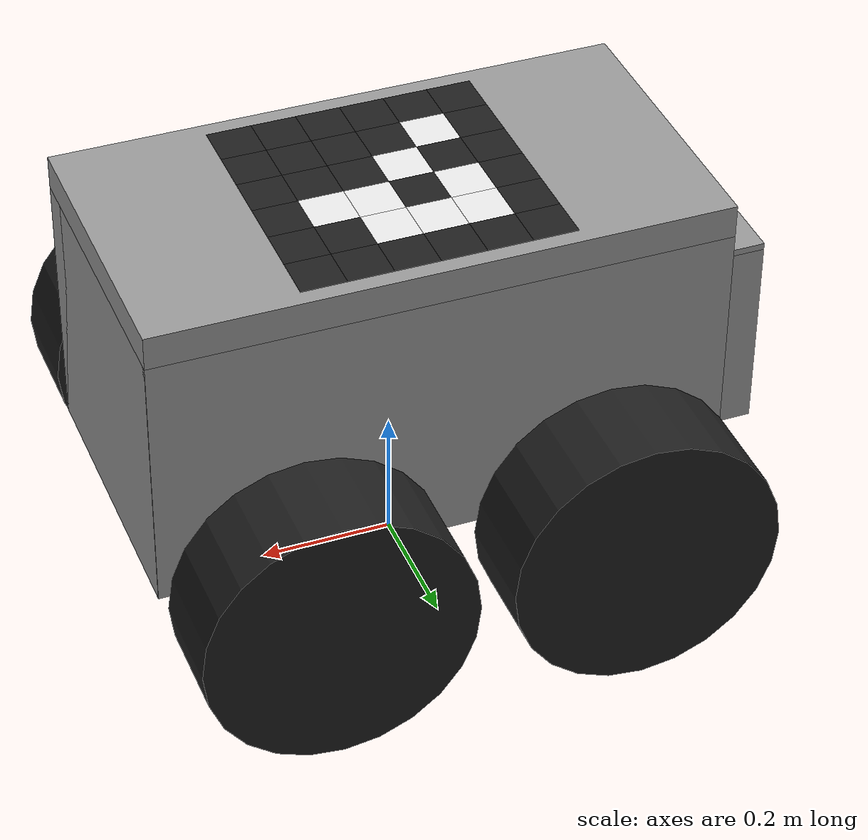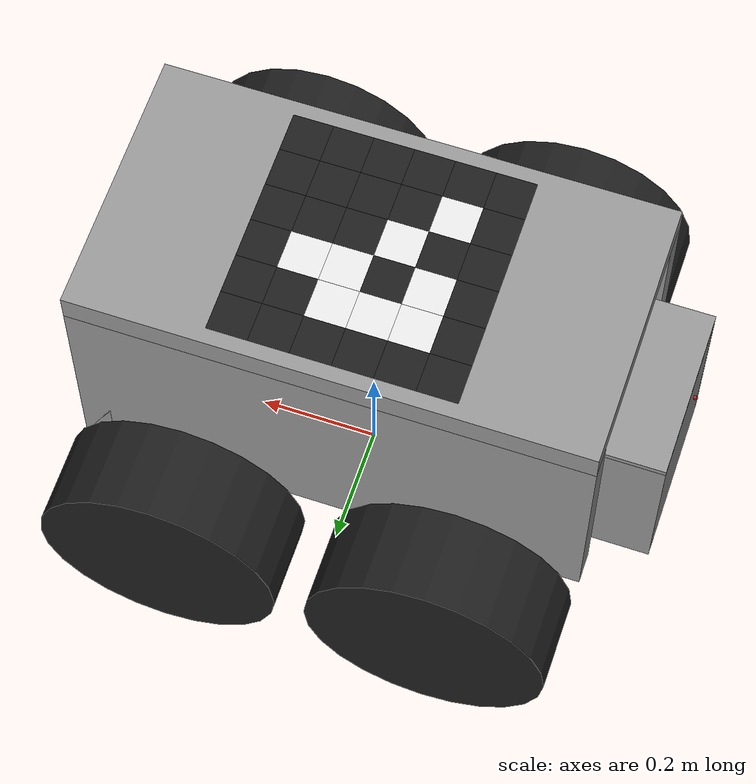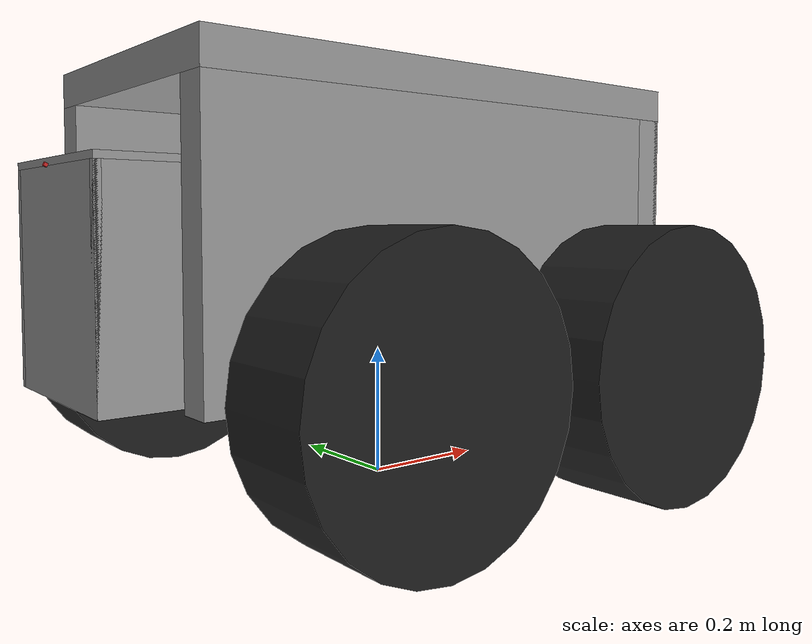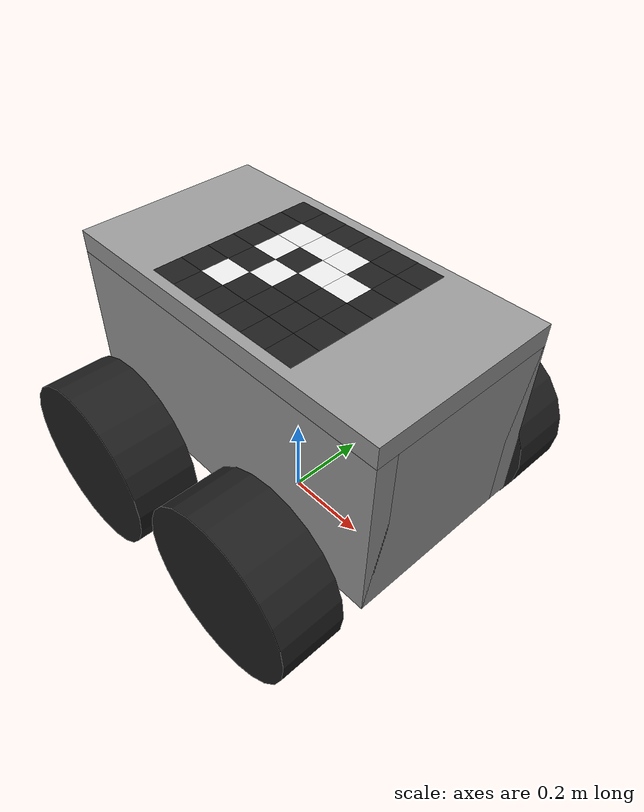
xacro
<?xml version="1.0"?>

<robot xmlns:xacro="http://www.ros.org/wiki/xacro" name="robot_1">

  <material name="White">
    <color rgba="1.0 1.0 1.0 1.0"/>
  </material>
  <material name="Black">
    <color rgba="0.1 0.1 0.1 1.0"/>
  </material>

  <xacro:macro name="cylinder_inertia" params="m r h">
    <inertia  ixx="${m*(3*r*r+h*h)/12}" ixy = "0" ixz = "0" iyy="${m*(3*r*r+h*h)/12}" iyz = "0" izz="${m*r*r/2}" />
  </xacro:macro>

  <xacro:macro name="box_inertia" params="m x y z">
    <inertia  ixx="${m*(y*y+z*z)/12}" ixy = "0" ixz = "0" iyy="${m*(x*x+z*z)/12}" iyz = "0" izz="${m*(x*x+y*y)/12}" />
  </xacro:macro>

  <xacro:macro name="sphere_inertia" params="m r">
    <inertia  ixx="${2/3*m*r*r}" ixy = "0" ixz = "0" iyy="${2/3*m*r*r}" iyz = "0" izz="${2/3*m*r*r}" />
  </xacro:macro>

  <xacro:macro name="sub_aruco_black" params="name x y z l h m">
    <link name="${name}">
      <visual>
        <geometry>
          <box size="${l} ${l} ${h}"/>
        </geometry>
        <origin xyz="${x} ${y} ${z}"/>
      </visual>
      <collision>
        <geometry>
          <box size="${l} ${l} ${h}"/>
        </geometry>
        <origin xyz="${x} ${y} ${z}"/>
      </collision>
    <inertial>
      <mass value="${m}"/>
      <xacro:box_inertia m="${m}" x="${l}" y="${l}" z="${h}" />
      <origin xyz="${x} ${y} ${z}"/>
    </inertial>
    </link>
    <gazebo reference="${name}">
      <material>Gazebo/Black</material>
    </gazebo>
  </xacro:macro>
  <xacro:macro name="sub_aruco_white" params="name x y z l h m">
    <link name="${name}">
      <visual>
        <geometry>
          <box size="${l} ${l} ${h}"/>
        </geometry>
        <origin xyz="${x} ${y} ${z}"/>
      </visual>
      <collision>
        <geometry>
          <box size="${l} ${l} ${h}"/>
        </geometry>
        <origin xyz="${x} ${y} ${z}"/>
      </collision>
    <inertial>
      <mass value="${m}"/>
      <xacro:box_inertia m="${m}" x="${l}" y="${l}" z="${h}" />
      <origin xyz="${x} ${y} ${z}"/>
    </inertial>
    </link>
    <gazebo reference="${name}">
      <material>Gazebo/White</material>
    </gazebo>
  </xacro:macro>

  <xacro:macro name="aruco" params="name x y z l h m">
    <xacro:sub_aruco_black name="${name}_11" x="${x-5*l/24}" y="${y-5*l/24}" z="${z}" l="${l/12}" h="${h}" m="${m}" />
    <xacro:sub_aruco_black name="${name}_12" x="${x-5*l/24}" y="${y-5*l/24+1*l/12}" z="${z}" l="${l/12}" h="${h}" m="${m}" />
    <xacro:sub_aruco_black name="${name}_13" x="${x-5*l/24}" y="${y-5*l/24+2*l/12}" z="${z}" l="${l/12}" h="${h}" m="${m}" />
    <xacro:sub_aruco_black name="${name}_14" x="${x-5*l/24}" y="${y-5*l/24+3*l/12}" z="${z}" l="${l/12}" h="${h}" m="${m}" />
    <xacro:sub_aruco_black name="${name}_15" x="${x-5*l/24}" y="${y-5*l/24+4*l/12}" z="${z}" l="${l/12}" h="${h}" m="${m}" />
    <xacro:sub_aruco_black name="${name}_16" x="${x-5*l/24}" y="${y-5*l/24+5*l/12}" z="${z}" l="${l/12}" h="${h}" m="${m}" />

    <xacro:sub_aruco_black name="${name}_21" x="${x-5*l/24+1*l/12}" y="${y-5*l/24}" z="${z}" l="${l/12}" h="${h}" m="${m}" />
    <xacro:sub_aruco_white name="${name}_22" x="${x-5*l/24+1*l/12}" y="${y-5*l/24+1*l/12}" z="${z}" l="${l/12}" h="${h}" m="${m}" />
    <xacro:sub_aruco_black name="${name}_23" x="${x-5*l/24+1*l/12}" y="${y-5*l/24+2*l/12}" z="${z}" l="${l/12}" h="${h}" m="${m}" />
    <xacro:sub_aruco_white name="${name}_24" x="${x-5*l/24+1*l/12}" y="${y-5*l/24+3*l/12}" z="${z}" l="${l/12}" h="${h}" m="${m}" />
    <xacro:sub_aruco_white name="${name}_25" x="${x-5*l/24+1*l/12}" y="${y-5*l/24+4*l/12}" z="${z}" l="${l/12}" h="${h}" m="${m}" />
    <xacro:sub_aruco_black name="${name}_26" x="${x-5*l/24+1*l/12}" y="${y-5*l/24+5*l/12}" z="${z}" l="${l/12}" h="${h}" m="${m}" />

    <xacro:sub_aruco_black name="${name}_31" x="${x-5*l/24+2*l/12}" y="${y-5*l/24}" z="${z}" l="${l/12}" h="${h}" m="${m}" />
    <xacro:sub_aruco_black name="${name}_32" x="${x-5*l/24+2*l/12}" y="${y-5*l/24+1*l/12}" z="${z}" l="${l/12}" h="${h}" m="${m}" />
    <xacro:sub_aruco_white name="${name}_33" x="${x-5*l/24+2*l/12}" y="${y-5*l/24+2*l/12}" z="${z}" l="${l/12}" h="${h}" m="${m}" />
    <xacro:sub_aruco_black name="${name}_34" x="${x-5*l/24+2*l/12}" y="${y-5*l/24+3*l/12}" z="${z}" l="${l/12}" h="${h}" m="${m}" />
    <xacro:sub_aruco_white name="${name}_35" x="${x-5*l/24+2*l/12}" y="${y-5*l/24+4*l/12}" z="${z}" l="${l/12}" h="${h}" m="${m}" />
    <xacro:sub_aruco_black name="${name}_36" x="${x-5*l/24+2*l/12}" y="${y-5*l/24+5*l/12}" z="${z}" l="${l/12}" h="${h}" m="${m}" />

    <xacro:sub_aruco_black name="${name}_41" x="${x-5*l/24+3*l/12}" y="${y-5*l/24}" z="${z}" l="${l/12}" h="${h}" m="${m}" />
    <xacro:sub_aruco_black name="${name}_42" x="${x-5*l/24+3*l/12}" y="${y-5*l/24+1*l/12}" z="${z}" l="${l/12}" h="${h}" m="${m}" />
    <xacro:sub_aruco_black name="${name}_43" x="${x-5*l/24+3*l/12}" y="${y-5*l/24+2*l/12}" z="${z}" l="${l/12}" h="${h}" m="${m}" />
    <xacro:sub_aruco_white name="${name}_44" x="${x-5*l/24+3*l/12}" y="${y-5*l/24+3*l/12}" z="${z}" l="${l/12}" h="${h}" m="${m}" />
    <xacro:sub_aruco_white name="${name}_45" x="${x-5*l/24+3*l/12}" y="${y-5*l/24+4*l/12}" z="${z}" l="${l/12}" h="${h}" m="${m}" />
    <xacro:sub_aruco_black name="${name}_46" x="${x-5*l/24+3*l/12}" y="${y-5*l/24+5*l/12}" z="${z}" l="${l/12}" h="${h}" m="${m}" />

    <xacro:sub_aruco_black name="${name}_51" x="${x-5*l/24+4*l/12}" y="${y-5*l/24}" z="${z}" l="${l/12}" h="${h}" m="${m}" />
    <xacro:sub_aruco_black name="${name}_52" x="${x-5*l/24+4*l/12}" y="${y-5*l/24+1*l/12}" z="${z}" l="${l/12}" h="${h}" m="${m}" />
    <xacro:sub_aruco_black name="${name}_53" x="${x-5*l/24+4*l/12}" y="${y-5*l/24+2*l/12}" z="${z}" l="${l/12}" h="${h}" m="${m}" />
    <xacro:sub_aruco_white name="${name}_54" x="${x-5*l/24+4*l/12}" y="${y-5*l/24+3*l/12}" z="${z}" l="${l/12}" h="${h}" m="${m}" />
    <xacro:sub_aruco_black name="${name}_55" x="${x-5*l/24+4*l/12}" y="${y-5*l/24+4*l/12}" z="${z}" l="${l/12}" h="${h}" m="${m}" />
    <xacro:sub_aruco_black name="${name}_56" x="${x-5*l/24+4*l/12}" y="${y-5*l/24+5*l/12}" z="${z}" l="${l/12}" h="${h}" m="${m}" />

    <xacro:sub_aruco_black name="${name}_61" x="${x-5*l/24+5*l/12}" y="${y-5*l/24}" z="${z}" l="${l/12}" h="${h}" m="${m}" />
    <xacro:sub_aruco_black name="${name}_62" x="${x-5*l/24+5*l/12}" y="${y-5*l/24+1*l/12}" z="${z}" l="${l/12}" h="${h}" m="${m}" />
    <xacro:sub_aruco_black name="${name}_63" x="${x-5*l/24+5*l/12}" y="${y-5*l/24+2*l/12}" z="${z}" l="${l/12}" h="${h}" m="${m}" />
    <xacro:sub_aruco_black name="${name}_64" x="${x-5*l/24+5*l/12}" y="${y-5*l/24+3*l/12}" z="${z}" l="${l/12}" h="${h}" m="${m}" />
    <xacro:sub_aruco_black name="${name}_65" x="${x-5*l/24+5*l/12}" y="${y-5*l/24+4*l/12}" z="${z}" l="${l/12}" h="${h}" m="${m}" />
    <xacro:sub_aruco_black name="${name}_66" x="${x-5*l/24+5*l/12}" y="${y-5*l/24+5*l/12}" z="${z}" l="${l/12}" h="${h}" m="${m}" />

    <xacro:fixed_joint elem1="${name}_11" elem2="${name}_12" />
    <xacro:fixed_joint elem1="${name}_12" elem2="${name}_13" />
    <xacro:fixed_joint elem1="${name}_13" elem2="${name}_14" />
    <xacro:fixed_joint elem1="${name}_14" elem2="${name}_15" />
    <xacro:fixed_joint elem1="${name}_15" elem2="${name}_16" />

    <xacro:fixed_joint elem1="${name}_16" elem2="${name}_21" />
    <xacro:fixed_joint elem1="${name}_21" elem2="${name}_22" />
    <xacro:fixed_joint elem1="${name}_22" elem2="${name}_23" />
    <xacro:fixed_joint elem1="${name}_23" elem2="${name}_24" />
    <xacro:fixed_joint elem1="${name}_24" elem2="${name}_25" />
    <xacro:fixed_joint elem1="${name}_25" elem2="${name}_26" />

    <xacro:fixed_joint elem1="${name}_26" elem2="${name}_31" />
    <xacro:fixed_joint elem1="${name}_31" elem2="${name}_32" />
    <xacro:fixed_joint elem1="${name}_32" elem2="${name}_33" />
    <xacro:fixed_joint elem1="${name}_33" elem2="${name}_34" />
    <xacro:fixed_joint elem1="${name}_34" elem2="${name}_35" />
    <xacro:fixed_joint elem1="${name}_35" elem2="${name}_36" />

    <xacro:fixed_joint elem1="${name}_36" elem2="${name}_41" />
    <xacro:fixed_joint elem1="${name}_41" elem2="${name}_42" />
    <xacro:fixed_joint elem1="${name}_42" elem2="${name}_43" />
    <xacro:fixed_joint elem1="${name}_43" elem2="${name}_44" />
    <xacro:fixed_joint elem1="${name}_44" elem2="${name}_45" />
    <xacro:fixed_joint elem1="${name}_45" elem2="${name}_46" />

    <xacro:fixed_joint elem1="${name}_46" elem2="${name}_51" />
    <xacro:fixed_joint elem1="${name}_51" elem2="${name}_52" />
    <xacro:fixed_joint elem1="${name}_52" elem2="${name}_53" />
    <xacro:fixed_joint elem1="${name}_53" elem2="${name}_54" />
    <xacro:fixed_joint elem1="${name}_54" elem2="${name}_55" />
    <xacro:fixed_joint elem1="${name}_55" elem2="${name}_56" />

    <xacro:fixed_joint elem1="${name}_56" elem2="${name}_61" />
    <xacro:fixed_joint elem1="${name}_61" elem2="${name}_62" />
    <xacro:fixed_joint elem1="${name}_62" elem2="${name}_63" />
    <xacro:fixed_joint elem1="${name}_63" elem2="${name}_64" />
    <xacro:fixed_joint elem1="${name}_64" elem2="${name}_65" />
    <xacro:fixed_joint elem1="${name}_65" elem2="${name}_66" />

  </xacro:macro>

  <xacro:macro name="sub_bloc" params="name x y z l1 l2 l3 m">
    <link name="${name}">
      <visual>
        <geometry>
          <box size="${l1} ${l2} ${l3}"/>
        </geometry>
        <origin xyz="${x} ${y} ${z}"/>
      </visual>
      <collision>
        <geometry>
          <box size="${l1} ${l2} ${l3}"/>
        </geometry>
        <origin xyz="${x} ${y} ${z}"/>
      </collision>
    <inertial>
      <mass value="${m}"/>
      <xacro:box_inertia m="${m}" x="${l1}" y="${l2}" z="${l3}" />
      <origin xyz="${x} ${y} ${z}"/>
    </inertial>
    </link>
    <gazebo reference="${name}">
      <material>Gazebo/Grey</material>
    </gazebo>

  </xacro:macro>

  <xacro:macro name="fixed_joint" params="elem1 elem2">
    <joint name="${elem1}_to_${elem2}" type="fixed">
      <parent link="${elem1}"/>
      <child link="${elem2}"/>
    </joint>
  </xacro:macro>

  <xacro:macro name="bloc5" params="name x y z l h m ep">
    <xacro:sub_bloc name="${name}_1" x="${x}" y="${y+l/2}" z="${z+h/2}" l1="${l+ep}" l2="${ep}" l3="${h}" m="${m/5}" />
    <xacro:sub_bloc name="${name}_2" x="${x}" y="${y-l/2}" z="${z+h/2}" l1="${l+ep}" l2="${ep}" l3="${h}" m="${m/5}" />
    <xacro:sub_bloc name="${name}_3" x="${x+l/2}" y="${y}" z="${z+h/2}" l1="${ep}" l2="${l+ep}" l3="${h}" m="${m/5}" />
    <xacro:sub_bloc name="${name}_4" x="${x-l/2}" y="${y}" z="${z+h/2}" l1="${ep}" l2="${l+ep}" l3="${h}" m="${m/5}" />
    <xacro:sub_bloc name="${name}_5" x="${x}" y="${y}" z="${z+h+ep/2}" l1="${l+ep}" l2="${l+ep}" l3="${ep}" m="${m/5}" />

    <xacro:fixed_joint elem1="${name}_1" elem2="${name}_2" />
    <xacro:fixed_joint elem1="${name}_2" elem2="${name}_3" />
    <xacro:fixed_joint elem1="${name}_3" elem2="${name}_4" />
    <xacro:fixed_joint elem1="${name}_4" elem2="${name}_5" />
  </xacro:macro>

  <xacro:macro name="bloc4" params="name x y z l1 l2 h m ep">
    <xacro:sub_bloc name="${name}_1" x="${x}" y="${y+l2/2}" z="${z+h/2}" l1="${l1+ep}" l2="${ep}" l3="${h}" m="${m/4}" />
    <xacro:sub_bloc name="${name}_2" x="${x}" y="${y-l2/2}" z="${z+h/2}" l1="${l1+ep}" l2="${ep}" l3="${h}" m="${m/4}" />
    <xacro:sub_bloc name="${name}_3" x="${x+l1/2}" y="${y}" z="${z+h/2}" l1="${ep}" l2="${l2+ep}" l3="${h}" m="${m/4}" />
    <xacro:sub_bloc name="${name}_4" x="${x}" y="${y}" z="${z+h+ep/2}" l1="${l1+ep}" l2="${l2+ep}" l3="${ep}" m="${m/4}" />

    <xacro:aruco name="${name}_aruco" x="${x}" y="${y}" z="${z+h+ep}" l="0.8" h="0.001" m="${m/1000}" />

    <xacro:fixed_joint elem1="${name}_1" elem2="${name}_2" />
    <xacro:fixed_joint elem1="${name}_2" elem2="${name}_3" />
    <xacro:fixed_joint elem1="${name}_3" elem2="${name}_4" />
    <xacro:fixed_joint elem1="${name}_4" elem2="${name}_aruco_11" />
  </xacro:macro>

  <xacro:macro name="sensor_xacro" params="name">
  <link name="${name}">
    <collision>
      <origin xyz="0 0 0" rpy="0 0 0"/>
      <geometry>
    <box size="0.005 0.005 0.005"/>
      </geometry>
    </collision>

    <visual>
      <origin xyz="0 0 0" rpy="0 0 0"/>
      <geometry>
    <box size="0.005 0.005 0.005"/>
      </geometry>
      <material name="red"/>
    </visual>

    <inertial>
      <mass value="1e-5" />
      <origin xyz="0 0 0" rpy="0 0 0"/>
      <inertia ixx="1e-6" ixy="0" ixz="0" iyy="1e-6" iyz="0" izz="1e-6" />
    </inertial>
  </link>
  </xacro:macro>

  <xacro:macro name="wheel" params="name ep r m">
    <link name="wheel_${name}">
    <visual>
      <geometry>
        <cylinder length="${ep}" radius="${r}"/>
      </geometry>
    </visual>
    <collision>
      <geometry>
        <cylinder length="${ep}" radius="${r}"/>
      </geometry>
    </collision>
    <inertial>
      <mass value="${m}"/>
      <xacro:cylinder_inertia m="${m}" r="${r}" h="${ep}"/>
    </inertial>
    </link>
    <gazebo reference="wheel_${name}">
      <mu1>1.2</mu1>
      <mu2>1.2</mu2>
      <kp>500000.0</kp>
      <kd>10.0</kd>
      <minDepth>0.001</minDepth>
      <maxVel>0.1</maxVel>
      <material>Gazebo/FlatBlack</material>
    </gazebo>
  </xacro:macro>

  <link name="root_link"/>

  <joint name="root_to_bloc_1" type="fixed">
    <parent link="root_link"/>
    <child link="center_1"/>
  </joint>

  <xacro:bloc4 name="center" x="0.0" y="0.0" z="0.175" l1="0.8" l2="0.4" h="0.4" ep="0.05" m="10" />
  <xacro:bloc5 name="catcher" x="-0.375" y="0.0" z="0.175" l="0.275" h="0.3" ep="0.01" m="3" />
  <xacro:wheel name="left_front" r="0.20" ep="0.15" m="3"/>
  <xacro:wheel name="left_back" r="0.20" ep="0.15" m="3"/>
  <xacro:wheel name="right_front" r="0.20" ep="0.15" m="3"/>
  <xacro:wheel name="right_back" r="0.20" ep="0.15" m="3"/>

  <xacro:sensor_xacro name="camera1_link" />
  <xacro:sensor_xacro name="camera2_link" />
  <xacro:sensor_xacro name="imu_link" />
  <xacro:sensor_xacro name="gps_link" />

  <gazebo reference="camera1_link">
    <sensor name="camera1" type="camera">
        <always_on>1</always_on>
        <update_rate>10</update_rate>
        <visualize>false</visualize>

        <camera name="camera1">
            <horizontal_fov>1</horizontal_fov>
            <image>
                <width>800</width>
                <height>800</height>
            </image>
            <clip>
                <near>0.02</near>
                <far>300</far>
            </clip>
        </camera>
        <plugin name="camera1_controller" filename="libgazebo_ros_camera.so">
            <camera_name>camera1</camera_name>
            <hack_baseline>0.07</hack_baseline>
        </plugin>

    </sensor>
  </gazebo>

  <gazebo reference="camera2_link">
    <sensor name="camera2" type="camera">
        <always_on>1</always_on>
        <update_rate>10</update_rate>
        <visualize>false</visualize>

        <camera name="camera2">
            <horizontal_fov>1</horizontal_fov>
            <image>
                <width>800</width>
                <height>800</height>
            </image>
            <clip>
                <near>0.02</near>
                <far>300</far>
            </clip>
        </camera>
        <plugin name="camera2_controller" filename="libgazebo_ros_camera.so">
            <camera_name>camera2</camera_name>
            <hack_baseline>0.07</hack_baseline>
        </plugin>

    </sensor>
  </gazebo>

    <gazebo>
      <plugin name="gazebo_ros_p3d" filename="libgazebo_ros_p3d.so">

        <ros>
          <argument>odom:=truth</argument>
        </ros>

        <frame_name>imu_link</frame_name>
        <body_name>root_link</body_name>
        <update_rate>30</update_rate>
        <rpy_offset>0.1 0.1 0.1</rpy_offset>
        <gaussian_noise>0.01</gaussian_noise>

      </plugin>
    </gazebo>

<gazebo reference="gps_link">
    <sensor name="gps_sensor" type="gps">
	<always_on>true</always_on>
	<update_rate>10</update_rate>
	<plugin name="gps_controller" filename="libgazebo_ros_gps_sensor.so">
	    <ros>
		<remapping>gps_controller/out:=gps</remapping>
	    </ros>
	    <frame_name>gps_link</frame_name>
	</plugin>
    </sensor>
    <material>Gazebo/Grey</material>
</gazebo>

  <joint name="catcher_to_cam1" type="fixed">
    <parent link="catcher_5"/>
    <child link="camera1_link"/>
    <origin rpy="0 1.57075 0" xyz="-0.375 0 0.475"/>
    <axis xyz= "0 0 1"/>
  </joint>

  <joint name="catcher_to_imu" type="fixed">
    <parent link="catcher_5"/>
    <child link="imu_link"/>
    <origin rpy="0 0 0" xyz="0 0 0.25"/>
    <axis xyz= "0 0 1"/>
  </joint>

  <joint name="catcher_to_cam2" type="fixed">
    <parent link="catcher_5"/>
    <child link="camera2_link"/>
    <origin rpy="0 2 0" xyz="-0.525 0 0.475"/>
    <axis xyz= "0 0 1"/>
  </joint>

  <joint name="root_to_wheel_lf" type="continuous">
    <parent link="root_link"/>
    <child link="wheel_left_front"/>
    <origin rpy="1.57075 1.57075 0" xyz="-0.225 -0.350 0.20"/>
    <axis xyz= "0 0 1"/>
  </joint>

  <joint name="root_to_wheel_lb" type="continuous">
    <parent link="root_link"/>
    <child link="wheel_left_back"/>
    <origin rpy="1.57075 1.57075 0" xyz="0.225 -0.350 0.20"/>
    <axis xyz= "0 0 1"/>
  </joint>

  <joint name="root_to_wheel_rf" type="continuous">
    <parent link="root_link"/>
    <child link="wheel_right_front"/>
    <origin rpy="1.57075 1.57075 0" xyz="-0.225 0.350 0.20"/>
    <axis xyz= "0 0 1"/>
  </joint>

  <joint name="root_to_wheel_rb" type="continuous">
    <parent link="root_link"/>
    <child link="wheel_right_back"/>
    <origin rpy="1.57075 1.57075 0" xyz="0.225 0.350 0.20"/>
    <axis xyz= "0 0 1"/>
  </joint>

  <joint name="catcher_joint" type="prismatic">
    <parent link="root_link"/>
    <child link="catcher_1"/>
    <axis xyz="0 0 1"/>
    <limit effort="10" lower="-0.10" upper="0.0" velocity="0.5"/>
  </joint>

  <joint name="catcher_to_gps" type="fixed">
    <parent link="catcher_5"/>
    <child link="gps_link"/>
    <origin rpy="0 0 0" xyz="0 0 0.25"/>
    <axis xyz= "0 0 1"/>
  </joint>

  <gazebo>
    <plugin name="skid_steer_drive_controller" filename="libgazebo_ros_diff_drive.so">
      <ros>
      </ros>

      <!-- Update rate -->
      <update_rate>50</update_rate>

      <!-- Number of wheel pairs -->
      <num_wheel_pairs>2</num_wheel_pairs>

      <left_joint>root_to_wheel_lf</left_joint>
      <right_joint>root_to_wheel_rf</right_joint>
      <left_joint>root_to_wheel_lb</left_joint>
      <right_joint>root_to_wheel_rb</right_joint>

      <!-- kinematics -->
      <wheel_separation>0.55</wheel_separation>
      <wheel_separation>0.55</wheel_separation>

      <wheel_diameter>0.2</wheel_diameter>
      <wheel_diameter>0.2</wheel_diameter>

      <!-- limits -->
      <max_wheel_torque>20</max_wheel_torque>
      <max_wheel_acceleration>0.5</max_wheel_acceleration>

      <!-- output -->
      <publish_odom>true</publish_odom>
      <publish_odom_tf>true</publish_odom_tf>
      <publish_wheel_tf>true</publish_wheel_tf>

      <odometry_frame>odom</odometry_frame>
      <robot_base_frame>root_link</robot_base_frame>
    </plugin>

    <plugin name="gazebo_ros_force" filename="libgazebo_ros_force.so">
        <ros>
          <remapping>gazebo_ros_force:=catcher_force</remapping>
        </ros>
        <link_name>catcher_1</link_name>
        <force_frame>world</force_frame>
    </plugin>
  </gazebo>

</robot>
